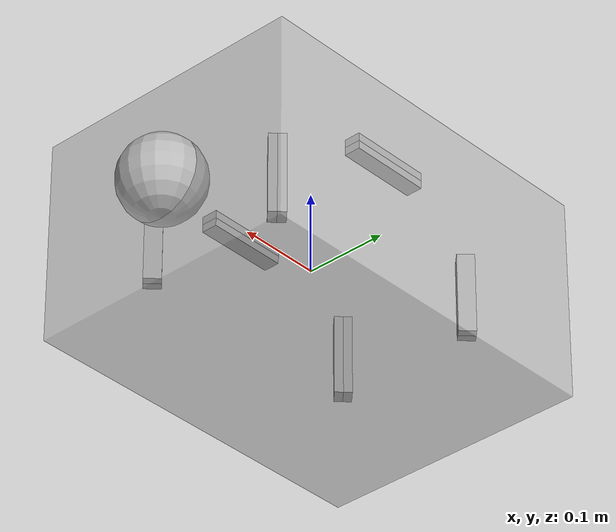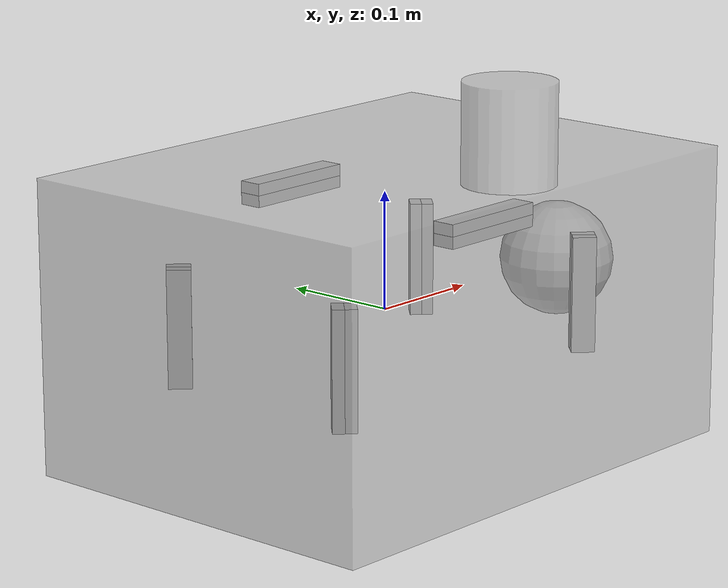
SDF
<?xml version="1.0"?>
<sdf version="1.6">
  <model name="bluerov2_lidar">
    <include merge="true">
      <uri>bluerov2</uri>
    </include>

    <link name="lidar_link">
      <pose>0 -0.1305 0.168 0 0 0</pose>
      <!-- fake values, ping360 is heavier -->
      <inertial>
        <pose>0 0 0 0 0 0</pose>
        <mass>0.01</mass>
        <inertia>
          <ixx>0.000009427233333333334</ixx>
          <ixy>0</ixy>
          <ixz>0</ixz>
          <iyy>0.000009427233333333333</iyy>
          <iyz>0</iyz>
          <izz>0.000007372799999999999</izz>
        </inertia>
      </inertial>

      <visual name="lidar_visual">
        <pose>0 0 0 0 0 0</pose>
        <transparency>0.5</transparency>
        <geometry>
          <cylinder>
            <radius>0.0385</radius>
            <length>0.083</length>
          </cylinder>
        </geometry>
      </visual>

      <collision name="lidar_collision">
        <pose>0 0 0.01 0 0 0</pose>
        <geometry>
          <cylinder>
            <radius>0.0385</radius>
            <length>0.083</length>
          </cylinder>
        </geometry>
      </collision>

      <sensor name='gpu_lidar' type='gpu_lidar'>"
        <pose relative_to='lidar_frame'>0 0 0 0 0 0</pose>
        <topic>lidar</topic>
        <update_rate>10</update_rate>
        <ray>
            <scan>
                <horizontal>
                    <samples>360</samples>
                    <resolution>1</resolution>
                    <min_angle>-0.7854</min_angle>
                    <max_angle>0.7854</max_angle>
                </horizontal>
                <vertical>
                    <samples>1</samples>
                    <resolution>0.01</resolution>
                    <min_angle>0</min_angle>
                    <max_angle>0</max_angle>
                </vertical>
            </scan>
            <range>
                <min>0.075</min>
                <max>2.0</max>
                <resolution>0.01</resolution>
            </range>
        </ray>
        <always_on>1</always_on>
        <visualize>true</visualize>
      </sensor>
    </link>

    <joint name="lidar_joint" type="fixed">
      <parent>base_link</parent>
      <child>lidar_link</child>
      <axis>
        <xyz>0 0 1</xyz>
      </axis>
    </joint>

    <frame name="lidar_frame" attached_to='lidar_link'>
      <pose>0.0 0 0.0 0 0 0</pose>
    </frame>

  </model>
</sdf>

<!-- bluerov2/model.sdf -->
<sdf version="1.6">
  <model name="bluerov2">
    <plugin
          name='modality_gz::Tracing'
          filename='ModalityTracingPlugin'>
          <enabled>true</enabled>
          <timeline_name>bluerov2</timeline_name>
          <allow_insecure_tls>true</allow_insecure_tls>
          <modalityd_url>modality-ingest://172.18.0.1:15182</modalityd_url>
          <link_name>base_link</link_name>
          <pose>true</pose>
          <linear_acceleration>true</linear_acceleration>
          <linear_velocity>true</linear_velocity>
          <contact_collision>true</contact_collision>
          <contact_name>base_link_collision</contact_name>
          <collision_name>base_link_collision</collision_name>
    </plugin>
    <pose>0 0 0 0 0 0</pose>

    <!-- BlueROV2 thruster reference: http://www.ardusub.com/introduction/features.html -->
    <!-- fluid_density: 1000 -->
    <!-- displaced_mass: 10.05 -->

    <link name="base_link">
        <sensor name='bluerov2_contact' type='contact'>
          <contact>
              <collision>base_link_collision</collision>
          </contact>
        </sensor>

      <inertial>
        <pose>0 0 0.011 0 0 0</pose>
        <mass>10</mass>
        <inertia>
          <ixx>0.09873097998042396</ixx>
          <ixy>0</ixy>
          <ixz>0</ixz>
          <iyy>0.17756847998042397</iyy>
          <iyz>0</iyz>
          <izz>0.2692441666666667</izz>
        </inertia>
      </inertial>

      <visual name="base_link_box">
        <pose>0 0 0 0 0 0</pose>
        <transparency>0.5</transparency>
        <geometry>
          <box>
            <size>0.457 0.338 0.25</size>
          </box>
        </geometry>
      </visual>

      <visual name="base_link_dome">
        <pose>0.2285 0 0 0 0 0</pose>
        <geometry>
          <sphere>
            <radius>0.05</radius>
          </sphere>
        </geometry>
        <material>
          <emissive>0 1 0 0</emissive>
        </material>
      </visual>

      <!-- Collision volume * fluid_density == displaced mass, used by BuoyancyPlugin -->
      <collision name="base_link_collision">
        <pose>0 0 0.06 0 0 0</pose>
        <geometry>
          <box>
            <size>0.457 0.338 0.06506286173008947</size>
          </box>
        </geometry>
      </collision>

      <!-- IMU sensor gyro and accel data will be sent to ArduSub -->
      <sensor name="imu_sensor" type="imu">
        <!-- Transform from the Ignition Gazebo body frame (x-forward, y-left, z-up)
             to the ArduPilot body frame (x-forward, y-right, z-down) -->
        <pose>0 0 0 3.141592653589793 0 0</pose>
        <always_on>1</always_on>
        <update_rate>1000.0</update_rate>
      </sensor>

    </link>

    <!-- Hydrodynamics plugin -->
    <plugin
        filename="ignition-gazebo-hydrodynamics-system"
        name="ignition::gazebo::systems::Hydrodynamics">
      <link_name>base_link</link_name>
      <water_density>1000</water_density>
      <!-- Added mass: -->
      <xDotU>0</xDotU>
      <yDotV>0</yDotV>
      <zDotW>0</zDotW>
      <kDotP>0</kDotP>
      <mDotQ>0</mDotQ>
      <nDotR>0</nDotR>
      <!-- First order stability derivative: -->
      <xU>0</xU>
      <yV>0</yV>
      <zW>0</zW>
      <kP>0</kP>
      <mQ>0</mQ>
      <nR>0</nR>
      <!-- Second order stability derivative: -->
      <xUU>-33.800000000000004</xUU>
      <yVV>-54.26875</yVV>
      <zWW>-73.37135</zWW>
      <kPP>-4.0</kPP>
      <mQQ>-4.0</mQQ>
      <nRR>-4.0</nRR>
    </plugin>

    <link name="thruster1">
      <pose>0.15 -0.09 0 -1.5707963267948966 1.5707963267948966 -0.7853981633974483</pose>
      <visual name="thruster_front">
        <pose>0 0 0.005 0 0 0</pose>
        <geometry>
          <box>
            <size>0.1 0.02 0.01</size>
          </box>
        </geometry>
        <material>
          <emissive>0 0 1 0</emissive>
        </material>
      </visual>
      <visual name="thruster_back">
        <pose>0 0 -0.005 0 0 0</pose>
        <geometry>
          <box>
            <size>0.1 0.02 0.01</size>
          </box>
        </geometry>
        <material>
          <emissive>1 0 0 0</emissive>
        </material>
      </visual>
      <inertial>
        <mass>0.002</mass>
        <inertia>
          <ixx>0.001</ixx>
          <ixy>0</ixy>
          <ixz>0</ixz>
          <iyy>0.001</iyy>
          <iyz>0</iyz>
          <izz>0.001</izz>
        </inertia>
      </inertial>
    </link>

    <link name="thruster2">
      <pose>0.15 0.09 0 -1.5707963267948966 1.5707963267948966 -2.356194490192345</pose>
      <visual name="thruster_front">
        <pose>0 0 0.005 0 0 0</pose>
        <geometry>
          <box>
            <size>0.1 0.02 0.01</size>
          </box>
        </geometry>
        <material>
          <emissive>0 0 1 0</emissive>
        </material>
      </visual>
      <visual name="thruster_back">
        <pose>0 0 -0.005 0 0 0</pose>
        <geometry>
          <box>
            <size>0.1 0.02 0.01</size>
          </box>
        </geometry>
        <material>
          <emissive>1 0 0 0</emissive>
        </material>
      </visual>
      <inertial>
        <mass>0.002</mass>
        <inertia>
          <ixx>0.001</ixx>
          <ixy>0</ixy>
          <ixz>0</ixz>
          <iyy>0.001</iyy>
          <iyz>0</iyz>
          <izz>0.001</izz>
        </inertia>
      </inertial>
    </link>

    <link name="thruster3">
      <pose>-0.15 -0.09 0 -1.5707963267948966 1.5707963267948966 0.7853981633974483</pose>
      <visual name="thruster_front">
        <pose>0 0 0.005 0 0 0</pose>
        <geometry>
          <box>
            <size>0.1 0.02 0.01</size>
          </box>
        </geometry>
        <material>
          <emissive>0 0 1 0</emissive>
        </material>
      </visual>
      <visual name="thruster_back">
        <pose>0 0 -0.005 0 0 0</pose>
        <geometry>
          <box>
            <size>0.1 0.02 0.01</size>
          </box>
        </geometry>
        <material>
          <emissive>1 0 0 0</emissive>
        </material>
      </visual>
      <inertial>
        <mass>0.002</mass>
        <inertia>
          <ixx>0.001</ixx>
          <ixy>0</ixy>
          <ixz>0</ixz>
          <iyy>0.001</iyy>
          <iyz>0</iyz>
          <izz>0.001</izz>
        </inertia>
      </inertial>
    </link>

    <link name="thruster4">
      <pose>-0.15 0.09 0 -1.5707963267948966 1.5707963267948966 2.356194490192345</pose>
      <visual name="thruster_front">
        <pose>0 0 0.005 0 0 0</pose>
        <geometry>
          <box>
            <size>0.1 0.02 0.01</size>
          </box>
        </geometry>
        <material>
          <emissive>0 0 1 0</emissive>
        </material>
      </visual>
      <visual name="thruster_back">
        <pose>0 0 -0.005 0 0 0</pose>
        <geometry>
          <box>
            <size>0.1 0.02 0.01</size>
          </box>
        </geometry>
        <material>
          <emissive>1 0 0 0</emissive>
        </material>
      </visual>
      <inertial>
        <mass>0.002</mass>
        <inertia>
          <ixx>0.001</ixx>
          <ixy>0</ixy>
          <ixz>0</ixz>
          <iyy>0.001</iyy>
          <iyz>0</iyz>
          <izz>0.001</izz>
        </inertia>
      </inertial>
    </link>

    <link name="thruster5">
      <pose>0 -0.105 0.09 0 0 0</pose>
      <visual name="thruster_front">
        <pose>0 0 0.005 0 0 0</pose>
        <geometry>
          <box>
            <size>0.1 0.02 0.01</size>
          </box>
        </geometry>
        <material>
          <emissive>0 0 1 0</emissive>
        </material>
      </visual>
      <visual name="thruster_back">
        <pose>0 0 -0.005 0 0 0</pose>
        <geometry>
          <box>
            <size>0.1 0.02 0.01</size>
          </box>
        </geometry>
        <material>
          <emissive>1 0 0 0</emissive>
        </material>
      </visual>
      <inertial>
        <mass>0.002</mass>
        <inertia>
          <ixx>0.001</ixx>
          <ixy>0</ixy>
          <ixz>0</ixz>
          <iyy>0.001</iyy>
          <iyz>0</iyz>
          <izz>0.001</izz>
        </inertia>
      </inertial>
    </link>

    <link name="thruster6">
      <pose>0 0.105 0.09 0 0 0</pose>
      <visual name="thruster_front">
        <pose>0 0 0.005 0 0 0</pose>
        <geometry>
          <box>
            <size>0.1 0.02 0.01</size>
          </box>
        </geometry>
        <material>
          <emissive>0 0 1 0</emissive>
        </material>
      </visual>
      <visual name="thruster_back">
        <pose>0 0 -0.005 0 0 0</pose>
        <geometry>
          <box>
            <size>0.1 0.02 0.01</size>
          </box>
        </geometry>
        <material>
          <emissive>1 0 0 0</emissive>
        </material>
      </visual>
      <inertial>
        <mass>0.002</mass>
        <inertia>
          <ixx>0.001</ixx>
          <ixy>0</ixy>
          <ixz>0</ixz>
          <iyy>0.001</iyy>
          <iyz>0</iyz>
          <izz>0.001</izz>
        </inertia>
      </inertial>
    </link>

    <joint name="thruster1_joint" type="revolute">
      <parent>base_link</parent>
      <child>thruster1</child>
      <axis>
        <xyz>0 0 -1</xyz>
      </axis>
    </joint>

    <joint name="thruster2_joint" type="revolute">
      <parent>base_link</parent>
      <child>thruster2</child>
      <axis>
        <xyz>0 0 -1</xyz>
      </axis>
    </joint>

    <joint name="thruster3_joint" type="revolute">
      <parent>base_link</parent>
      <child>thruster3</child>
      <axis>
        <xyz>0 0 -1</xyz>
      </axis>
    </joint>

    <joint name="thruster4_joint" type="revolute">
      <parent>base_link</parent>
      <child>thruster4</child>
      <axis>
        <xyz>0 0 -1</xyz>
      </axis>
    </joint>

    <joint name="thruster5_joint" type="revolute">
      <parent>base_link</parent>
      <child>thruster5</child>
      <axis>
        <xyz>0 0 -1</xyz>
      </axis>
    </joint>

    <joint name="thruster6_joint" type="revolute">
      <parent>base_link</parent>
      <child>thruster6</child>
      <axis>
        <xyz>0 0 -1</xyz>
      </axis>
    </joint>

    <plugin
        filename="ignition-gazebo-thruster-system"
        name="ignition::gazebo::systems::Thruster">
      <namespace>bluerov2</namespace>
      <joint_name>thruster1_joint</joint_name>
      <thrust_coefficient>0.02</thrust_coefficient>
      <fluid_density>1000</fluid_density>
      <propeller_diameter>0.1</propeller_diameter>
      <velocity_control>true</velocity_control>
      <use_angvel_cmd>False</use_angvel_cmd>
    </plugin>

    <plugin
        filename="ignition-gazebo-thruster-system"
        name="ignition::gazebo::systems::Thruster">
      <namespace>bluerov2</namespace>
      <joint_name>thruster2_joint</joint_name>
      <thrust_coefficient>0.02</thrust_coefficient>
      <fluid_density>1000</fluid_density>
      <propeller_diameter>0.1</propeller_diameter>
      <velocity_control>true</velocity_control>
      <use_angvel_cmd>False</use_angvel_cmd>
    </plugin>

    <plugin
        filename="ignition-gazebo-thruster-system"
        name="ignition::gazebo::systems::Thruster">
      <namespace>bluerov2</namespace>
      <joint_name>thruster3_joint</joint_name>
      <!-- Reverse spin to balance torque -->
      <thrust_coefficient>-0.02</thrust_coefficient>
      <fluid_density>1000</fluid_density>
      <propeller_diameter>0.1</propeller_diameter>
      <velocity_control>true</velocity_control>
      <use_angvel_cmd>False</use_angvel_cmd>
    </plugin>

    <plugin
        filename="ignition-gazebo-thruster-system"
        name="ignition::gazebo::systems::Thruster">
      <namespace>bluerov2</namespace>
      <joint_name>thruster4_joint</joint_name>
      <!-- Reverse spin to balance torque -->
      <thrust_coefficient>-0.02</thrust_coefficient>
      <fluid_density>1000</fluid_density>
      <propeller_diameter>0.1</propeller_diameter>
      <velocity_control>true</velocity_control>
      <use_angvel_cmd>False</use_angvel_cmd>
    </plugin>

    <plugin
        filename="ignition-gazebo-thruster-system"
        name="ignition::gazebo::systems::Thruster">
      <namespace>bluerov2</namespace>
      <joint_name>thruster5_joint</joint_name>
      <thrust_coefficient>0.02</thrust_coefficient>
      <fluid_density>1000</fluid_density>
      <propeller_diameter>0.1</propeller_diameter>
      <velocity_control>true</velocity_control>
      <use_angvel_cmd>False</use_angvel_cmd>
    </plugin>

    <plugin
        filename="ignition-gazebo-thruster-system"
        name="ignition::gazebo::systems::Thruster">
      <namespace>bluerov2</namespace>
      <joint_name>thruster6_joint</joint_name>
      <!-- Reverse spin to balance torque -->
      <thrust_coefficient>-0.02</thrust_coefficient>
      <fluid_density>1000</fluid_density>
      <propeller_diameter>0.1</propeller_diameter>
      <velocity_control>true</velocity_control>
      <use_angvel_cmd>False</use_angvel_cmd>
    </plugin>

    <plugin name="ArduPilotPlugin" filename="libArduPilotPlugin.so">
      <!-- Port settings -->
      <fdm_addr>127.0.0.1</fdm_addr>
      <fdm_port_in>9002</fdm_port_in>
      <connectionTimeoutMaxCount>5</connectionTimeoutMaxCount>
      <lock_step>1</lock_step>

      <!-- Transform from the Ignition Gazebo body frame (x-forward, y-left, z-up)
           to the ArduPilot body frame (x-forward, y-right, z-down) -->
      <modelXYZToAirplaneXForwardZDown>0 0 0 3.141592653589793 0 0</modelXYZToAirplaneXForwardZDown>

      <!-- Transform from the Ignition Gazebo world frame (ENU)
           to the ArduPilot world frame (NED) -->
      <gazeboXYZToNED>0 0 0 3.141592653589793 0 1.5707963267948966</gazeboXYZToNED>

      <!-- Sensors -->
      <imuName>imu_sensor</imuName>

      <!-- Thrusters -->
      <control channel="0">
        <jointName>thruster1_joint</jointName>
        <servo_min>1100</servo_min>
        <servo_max>1900</servo_max>
        <type>COMMAND</type>
        <cmd_topic>/model/bluerov2/joint/thruster1_joint/cmd_thrust</cmd_topic>
        <offset>-0.5</offset>
        <multiplier>100</multiplier>
      </control>
      <control channel="1">
        <jointName>thruster2_joint</jointName>
        <servo_min>1100</servo_min>
        <servo_max>1900</servo_max>
        <type>COMMAND</type>
        <cmd_topic>/model/bluerov2/joint/thruster2_joint/cmd_thrust</cmd_topic>
        <offset>-0.5</offset>
        <multiplier>100</multiplier>
      </control>
      <control channel="2">
        <jointName>thruster3_joint</jointName>
        <servo_min>1100</servo_min>
        <servo_max>1900</servo_max>
        <type>COMMAND</type>
        <cmd_topic>/model/bluerov2/joint/thruster3_joint/cmd_thrust</cmd_topic>
        <offset>-0.5</offset>
        <multiplier>100</multiplier>
      </control>
      <control channel="3">
        <jointName>thruster4_joint</jointName>
        <servo_min>1100</servo_min>
        <servo_max>1900</servo_max>
        <type>COMMAND</type>
        <cmd_topic>/model/bluerov2/joint/thruster4_joint/cmd_thrust</cmd_topic>
        <offset>-0.5</offset>
        <multiplier>100</multiplier>
      </control>
      <control channel="4">
        <jointName>thruster5_joint</jointName>
        <servo_min>1100</servo_min>
        <servo_max>1900</servo_max>
        <type>COMMAND</type>
        <cmd_topic>/model/bluerov2/joint/thruster5_joint/cmd_thrust</cmd_topic>
        <offset>-0.5</offset>
        <multiplier>100</multiplier>
      </control>
      <control channel="5">
        <jointName>thruster6_joint</jointName>
        <servo_min>1100</servo_min>
        <servo_max>1900</servo_max>
        <type>COMMAND</type>
        <cmd_topic>/model/bluerov2/joint/thruster6_joint/cmd_thrust</cmd_topic>
        <offset>-0.5</offset>
        <multiplier>100</multiplier>
      </control>

    </plugin>

  </model>
</sdf>
